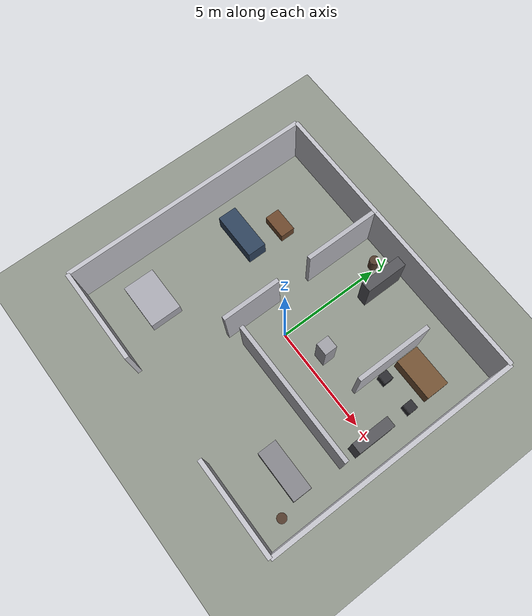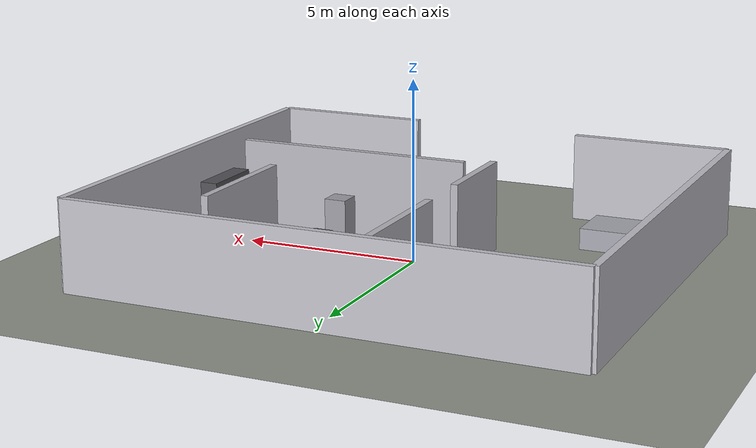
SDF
<?xml version="1.0" ?>
<sdf version="1.10">
  <world name="home_assistant_room">
    <gravity>0 0 -9.8</gravity>
    <physics type="ode">
      <max_step_size>0.004</max_step_size>
      <real_time_factor>1</real_time_factor>
      <real_time_update_rate>250</real_time_update_rate>
      <max_contacts>20</max_contacts>
    </physics>

    <plugin name="gz::sim::systems::Physics" filename="gz-sim-physics-system"/>
    <plugin name="gz::sim::systems::UserCommands" filename="gz-sim-user-commands-system"/>
    <plugin name="gz::sim::systems::SceneBroadcaster" filename="gz-sim-scene-broadcaster-system"/>
    <plugin name="gz::sim::systems::Contact" filename="gz-sim-contact-system"/>
    <plugin name="gz::sim::systems::Imu" filename="gz-sim-imu-system"/>
    <plugin name="gz::sim::systems::Magnetometer" filename="gz-sim-magnetometer-system"/>
    <plugin name="gz::sim::systems::AirPressure" filename="gz-sim-air-pressure-system"/>
    <plugin name="gz::sim::systems::ApplyLinkWrench" filename="gz-sim-apply-link-wrench-system"/>
    <plugin name="gz::sim::systems::NavSat" filename="gz-sim-navsat-system"/>
    <plugin name="gz::sim::systems::Sensors" filename="gz-sim-sensors-system">
      <render_engine>ogre2</render_engine>
    </plugin>

    <scene>
      <ambient>0.45 0.45 0.45 1</ambient>
      <background>0.67 0.78 0.89 1</background>
      <shadows>false</shadows>
      <grid>false</grid>
    </scene>
    <atmosphere type="adiabatic"/>

    <light name="home_sun" type="directional">
      <cast_shadows>false</cast_shadows>
      <pose>0 0 25 0 0 0</pose>
      <diffuse>0.95 0.95 0.95 1</diffuse>
      <specular>0.2 0.2 0.2 1</specular>
      <attenuation>
        <range>200</range>
        <constant>0.9</constant>
        <linear>0.01</linear>
        <quadratic>0.001</quadratic>
      </attenuation>
      <direction>-0.25 0.2 -0.95</direction>
    </light>

    <model name="floor">
      <static>true</static>
      <pose>0 0 0 0 0 0</pose>
      <link name="link">
        <collision name="collision">
          <geometry>
            <plane>
              <normal>0 0 1</normal>
              <size>40 40</size>
            </plane>
          </geometry>
        </collision>
        <visual name="visual">
          <cast_shadows>false</cast_shadows>
          <geometry>
            <plane>
              <normal>0 0 1</normal>
              <size>40 40</size>
            </plane>
          </geometry>
          <material>
            <ambient>0.56 0.58 0.54 1</ambient>
            <diffuse>0.56 0.58 0.54 1</diffuse>
            <specular>0 0 0 1</specular>
          </material>
        </visual>
      </link>
    </model>

    <!-- Outer walls: 14m x 12m apartment shell with south door opening -->
    <model name="wall_north">
      <static>true</static>
      <pose>0 6 1.25 0 0 0</pose>
      <link name="link">
        <collision name="collision">
          <geometry><box><size>14 0.2 2.5</size></box></geometry>
        </collision>
        <visual name="visual">
          <geometry><box><size>14 0.2 2.5</size></box></geometry>
          <material><diffuse>0.76 0.76 0.79 1</diffuse></material>
        </visual>
      </link>
    </model>

    <model name="wall_south_left">
      <static>true</static>
      <pose>-4.75 -6 1.25 0 0 0</pose>
      <link name="link">
        <collision name="collision">
          <geometry><box><size>4.5 0.2 2.5</size></box></geometry>
        </collision>
        <visual name="visual">
          <geometry><box><size>4.5 0.2 2.5</size></box></geometry>
          <material><diffuse>0.76 0.76 0.79 1</diffuse></material>
        </visual>
      </link>
    </model>

    <model name="wall_south_right">
      <static>true</static>
      <pose>4.75 -6 1.25 0 0 0</pose>
      <link name="link">
        <collision name="collision">
          <geometry><box><size>4.5 0.2 2.5</size></box></geometry>
        </collision>
        <visual name="visual">
          <geometry><box><size>4.5 0.2 2.5</size></box></geometry>
          <material><diffuse>0.76 0.76 0.79 1</diffuse></material>
        </visual>
      </link>
    </model>

    <model name="wall_east">
      <static>true</static>
      <pose>7 0 1.25 0 0 0</pose>
      <link name="link">
        <collision name="collision">
          <geometry><box><size>0.2 12 2.5</size></box></geometry>
        </collision>
        <visual name="visual">
          <geometry><box><size>0.2 12 2.5</size></box></geometry>
          <material><diffuse>0.76 0.76 0.79 1</diffuse></material>
        </visual>
      </link>
    </model>

    <model name="wall_west">
      <static>true</static>
      <pose>-7 0 1.25 0 0 0</pose>
      <link name="link">
        <collision name="collision">
          <geometry><box><size>0.2 12 2.5</size></box></geometry>
        </collision>
        <visual name="visual">
          <geometry><box><size>0.2 12 2.5</size></box></geometry>
          <material><diffuse>0.76 0.76 0.79 1</diffuse></material>
        </visual>
      </link>
    </model>

    <!-- Internal walls with door gaps -->
    <model name="inner_wall_left_top">
      <static>true</static>
      <pose>-1.5 4.2 1.25 0 0 0</pose>
      <link name="link">
        <collision name="collision">
          <geometry><box><size>0.2 3.6 2.5</size></box></geometry>
        </collision>
        <visual name="visual">
          <geometry><box><size>0.2 3.6 2.5</size></box></geometry>
          <material><diffuse>0.72 0.72 0.75 1</diffuse></material>
        </visual>
      </link>
    </model>

    <model name="inner_wall_left_bottom">
      <static>true</static>
      <pose>-1.5 -0.6 1.25 0 0 0</pose>
      <link name="link">
        <collision name="collision">
          <geometry><box><size>0.2 2.8 2.5</size></box></geometry>
        </collision>
        <visual name="visual">
          <geometry><box><size>0.2 2.8 2.5</size></box></geometry>
          <material><diffuse>0.72 0.72 0.75 1</diffuse></material>
        </visual>
      </link>
    </model>

    <model name="inner_wall_mid_horizontal">
      <static>true</static>
      <pose>2.6 -1.6 1.25 0 0 0</pose>
      <link name="link">
        <collision name="collision">
          <geometry><box><size>6.8 0.2 2.5</size></box></geometry>
        </collision>
        <visual name="visual">
          <geometry><box><size>6.8 0.2 2.5</size></box></geometry>
          <material><diffuse>0.72 0.72 0.75 1</diffuse></material>
        </visual>
      </link>
    </model>

    <model name="inner_wall_right_vertical">
      <static>true</static>
      <pose>3.8 2.6 1.25 0 0 0</pose>
      <link name="link">
        <collision name="collision">
          <geometry><box><size>0.2 3.6 2.5</size></box></geometry>
        </collision>
        <visual name="visual">
          <geometry><box><size>0.2 3.6 2.5</size></box></geometry>
          <material><diffuse>0.72 0.72 0.75 1</diffuse></material>
        </visual>
      </link>
    </model>

    <!-- Furniture and obstacles (all static for mapping/nav) -->
    <model name="dining_table">
      <static>true</static>
      <pose>5.0 3.5 0.4 0 0 0</pose>
      <link name="link">
        <collision name="collision"><geometry><box><size>2.0 1.1 0.8</size></box></geometry></collision>
        <visual name="visual">
          <geometry><box><size>2.0 1.1 0.8</size></box></geometry>
          <material><diffuse>0.45 0.32 0.20 1</diffuse></material>
        </visual>
      </link>
    </model>

    <model name="coffee_table">
      <static>true</static>
      <pose>-4.3 3.0 0.25 0 0 0</pose>
      <link name="link">
        <collision name="collision"><geometry><box><size>1.2 0.7 0.5</size></box></geometry></collision>
        <visual name="visual">
          <geometry><box><size>1.2 0.7 0.5</size></box></geometry>
          <material><diffuse>0.42 0.28 0.17 1</diffuse></material>
        </visual>
      </link>
    </model>

    <model name="kitchen_island">
      <static>true</static>
      <pose>4.7 -3.6 0.45 0 0 0</pose>
      <link name="link">
        <collision name="collision"><geometry><box><size>2.4 0.9 0.9</size></box></geometry></collision>
        <visual name="visual">
          <geometry><box><size>2.4 0.9 0.9</size></box></geometry>
          <material><diffuse>0.52 0.52 0.54 1</diffuse></material>
        </visual>
      </link>
    </model>

    <model name="sofa_block">
      <static>true</static>
      <pose>-4.9 1.3 0.4 0 0 0</pose>
      <link name="link">
        <collision name="collision"><geometry><box><size>2.3 0.9 0.8</size></box></geometry></collision>
        <visual name="visual">
          <geometry><box><size>2.3 0.9 0.8</size></box></geometry>
          <material><diffuse>0.18 0.26 0.36 1</diffuse></material>
        </visual>
      </link>
    </model>

    <model name="bed_block">
      <static>true</static>
      <pose>-4.8 -3.7 0.3 0 0 0</pose>
      <link name="link">
        <collision name="collision"><geometry><box><size>2.2 1.5 0.6</size></box></geometry></collision>
        <visual name="visual">
          <geometry><box><size>2.2 1.5 0.6</size></box></geometry>
          <material><diffuse>0.66 0.66 0.70 1</diffuse></material>
        </visual>
      </link>
    </model>

    <model name="shelf_living">
      <static>true</static>
      <pose>0.8 4.7 0.9 0 0 0</pose>
      <link name="link">
        <collision name="collision"><geometry><box><size>0.5 2.0 1.8</size></box></geometry></collision>
        <visual name="visual">
          <geometry><box><size>0.5 2.0 1.8</size></box></geometry>
          <material><diffuse>0.33 0.33 0.35 1</diffuse></material>
        </visual>
      </link>
    </model>

    <model name="shelf_kitchen">
      <static>true</static>
      <pose>5.8 0.0 0.9 0 0 0</pose>
      <link name="link">
        <collision name="collision"><geometry><box><size>0.5 1.8 1.8</size></box></geometry></collision>
        <visual name="visual">
          <geometry><box><size>0.5 1.8 1.8</size></box></geometry>
          <material><diffuse>0.33 0.33 0.35 1</diffuse></material>
        </visual>
      </link>
    </model>

    <model name="plant_pot_1">
      <static>true</static>
      <pose>-0.2 5.2 0.35 0 0 0</pose>
      <link name="link">
        <collision name="collision"><geometry><cylinder><radius>0.22</radius><length>0.7</length></cylinder></geometry></collision>
        <visual name="visual">
          <geometry><cylinder><radius>0.22</radius><length>0.7</length></cylinder></geometry>
          <material><diffuse>0.32 0.23 0.17 1</diffuse></material>
        </visual>
      </link>
    </model>

    <model name="plant_pot_2">
      <static>true</static>
      <pose>6.1 -4.8 0.35 0 0 0</pose>
      <link name="link">
        <collision name="collision"><geometry><cylinder><radius>0.22</radius><length>0.7</length></cylinder></geometry></collision>
        <visual name="visual">
          <geometry><cylinder><radius>0.22</radius><length>0.7</length></cylinder></geometry>
          <material><diffuse>0.32 0.23 0.17 1</diffuse></material>
        </visual>
      </link>
    </model>

    <model name="chair_1">
      <static>true</static>
      <pose>4.2 2.2 0.3 0 0 0</pose>
      <link name="link">
        <collision name="collision"><geometry><box><size>0.45 0.45 0.6</size></box></geometry></collision>
        <visual name="visual">
          <geometry><box><size>0.45 0.45 0.6</size></box></geometry>
          <material><diffuse>0.17 0.17 0.19 1</diffuse></material>
        </visual>
      </link>
    </model>

    <model name="chair_2">
      <static>true</static>
      <pose>5.8 2.2 0.3 0 0 0</pose>
      <link name="link">
        <collision name="collision"><geometry><box><size>0.45 0.45 0.6</size></box></geometry></collision>
        <visual name="visual">
          <geometry><box><size>0.45 0.45 0.6</size></box></geometry>
          <material><diffuse>0.17 0.17 0.19 1</diffuse></material>
        </visual>
      </link>
    </model>

    <model name="center_column">
      <static>true</static>
      <pose>1.8 0.8 0.9 0 0 0</pose>
      <link name="link">
        <collision name="collision"><geometry><box><size>0.6 0.6 1.8</size></box></geometry></collision>
        <visual name="visual">
          <geometry><box><size>0.6 0.6 1.8</size></box></geometry>
          <material><diffuse>0.62 0.62 0.65 1</diffuse></material>
        </visual>
      </link>
    </model>

  </world>
</sdf>
